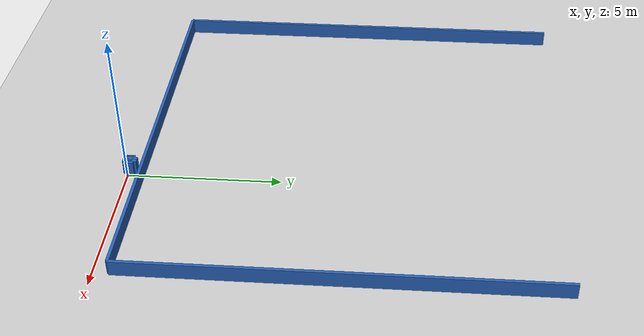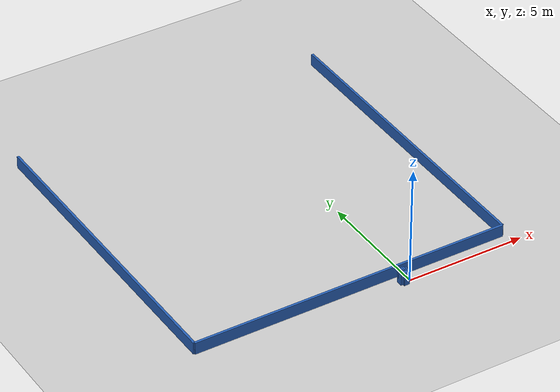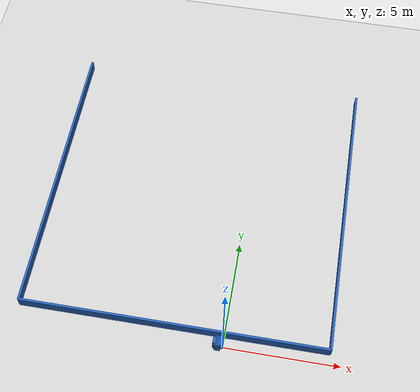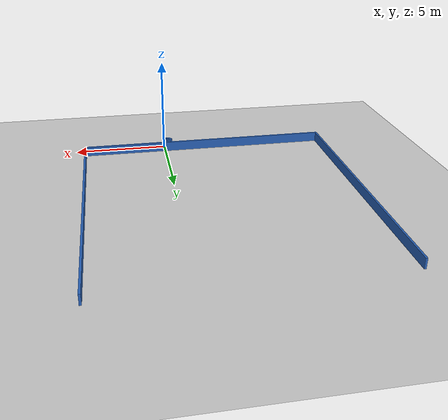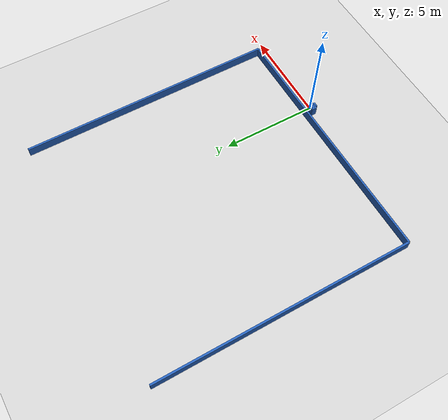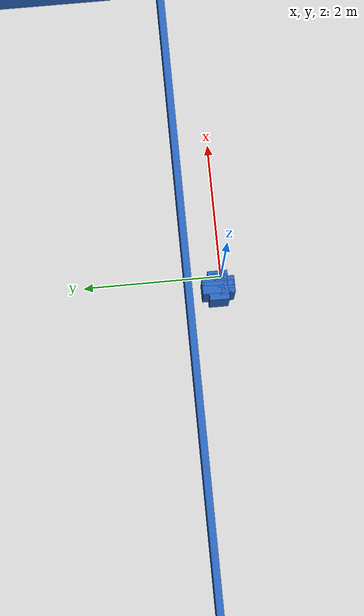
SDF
<?xml version="1.0" ?>
    <sdf version="1.5">
      <world name="default">
        <!-- A global light source -->
        <include>
          <uri>model://sun</uri>
        </include>
        <!-- A ground plane -->
        <include>
          <uri>model://ground_plane</uri>
        </include>

    <model name='libopen_space_final_T2B_148_40'>
      <static>1</static>
      <pose frame=''>-0.225000 0.075000 0.000000 0.000000 0.000000 0.000000</pose>
      <link name='link'>
        <inertial>
          <mass>1</mass>
          <inertia>
            <ixx>0.145833</ixx>
            <ixy>0</ixy>
            <ixz>0</ixz>
            <iyy>0.145833</iyy>
            <iyz>0</iyz>
            <izz>0.125</izz>
          </inertia>
        </inertial>
        <collision name='collision'>
          <geometry>
            <box>
              <size>0.29 0.26 1</size>
            </box>
          </geometry>
          <max_contacts>10</max_contacts>
          <surface>
            <contact>
              <ode/>
            </contact>
            <bounce/>
            <friction>
              <torsional>
                <ode/>
              </torsional>
              <ode/>
            </friction>
          </surface>
        </collision>
        <visual name='visual'>
          <geometry>
            <box>
              <size>0.29 0.26 1</size>
            </box>
          </geometry>
	    <material>
              <ambient>0.152000 0.379000 0.720000 1</ambient>
	      <diffuse>0.152000 0.379000 0.720000 1</diffuse>
          </material>
          <material>
            <script>
              <name>Gazebo/Grey</name>
              <uri>file://media/materials/scripts/gazebo.material</uri>
            </script>
          </material>
        </visual>
        <self_collide>0</self_collide>
        <kinematic>0</kinematic>
        <gravity>1</gravity>
      </link>
      <plugin name='libopen_space_final_T2B_148_40' filename='libopen_space_final_T2B_148_40.so'/>
    </model>

    <model name='libopen_space_final_T2B_51_63'>
      <static>1</static>
      <pose frame=''>-0.225000 0.075000 0.000000 0.000000 0.000000 0.000000</pose>
      <link name='link'>
        <inertial>
          <mass>1</mass>
          <inertia>
            <ixx>0.145833</ixx>
            <ixy>0</ixy>
            <ixz>0</ixz>
            <iyy>0.145833</iyy>
            <iyz>0</iyz>
            <izz>0.125</izz>
          </inertia>
        </inertial>
        <collision name='collision'>
          <geometry>
            <box>
              <size>0.42 0.14 1</size>
            </box>
          </geometry>
          <max_contacts>10</max_contacts>
          <surface>
            <contact>
              <ode/>
            </contact>
            <bounce/>
            <friction>
              <torsional>
                <ode/>
              </torsional>
              <ode/>
            </friction>
          </surface>
        </collision>
        <visual name='visual'>
          <geometry>
            <box>
              <size>0.42 0.14 1</size>
            </box>
          </geometry>
	    <material>
              <ambient>0.152000 0.379000 0.720000 1</ambient>
	      <diffuse>0.152000 0.379000 0.720000 1</diffuse>
          </material>
          <material>
            <script>
              <name>Gazebo/Grey</name>
              <uri>file://media/materials/scripts/gazebo.material</uri>
            </script>
          </material>
        </visual>
        <self_collide>0</self_collide>
        <kinematic>0</kinematic>
        <gravity>1</gravity>
      </link>
      <plugin name='libopen_space_final_T2B_51_63' filename='libopen_space_final_T2B_51_63.so'/>
    </model>

    <model name='libopen_space_final_T2B_111_18'>
      <static>1</static>
      <pose frame=''>-0.225000 0.075000 0.000000 0.000000 0.000000 0.000000</pose>
      <link name='link'>
        <inertial>
          <mass>1</mass>
          <inertia>
            <ixx>0.145833</ixx>
            <ixy>0</ixy>
            <ixz>0</ixz>
            <iyy>0.145833</iyy>
            <iyz>0</iyz>
            <izz>0.125</izz>
          </inertia>
        </inertial>
        <collision name='collision'>
          <geometry>
            <box>
              <size>0.42 0.28 1</size>
            </box>
          </geometry>
          <max_contacts>10</max_contacts>
          <surface>
            <contact>
              <ode/>
            </contact>
            <bounce/>
            <friction>
              <torsional>
                <ode/>
              </torsional>
              <ode/>
            </friction>
          </surface>
        </collision>
        <visual name='visual'>
          <geometry>
            <box>
              <size>0.42 0.28 1</size>
            </box>
          </geometry>
	    <material>
              <ambient>0.152000 0.379000 0.720000 1</ambient>
	      <diffuse>0.152000 0.379000 0.720000 1</diffuse>
          </material>
          <material>
            <script>
              <name>Gazebo/Grey</name>
              <uri>file://media/materials/scripts/gazebo.material</uri>
            </script>
          </material>
        </visual>
        <self_collide>0</self_collide>
        <kinematic>0</kinematic>
        <gravity>1</gravity>
      </link>
      <plugin name='libopen_space_final_T2B_111_18' filename='libopen_space_final_T2B_111_18.so'/>
    </model>

    <model name='libopen_space_final_T2B_106_71'>
      <static>1</static>
      <pose frame=''>-0.225000 0.075000 0.000000 0.000000 0.000000 0.000000</pose>
      <link name='link'>
        <inertial>
          <mass>1</mass>
          <inertia>
            <ixx>0.145833</ixx>
            <ixy>0</ixy>
            <ixz>0</ixz>
            <iyy>0.145833</iyy>
            <iyz>0</iyz>
            <izz>0.125</izz>
          </inertia>
        </inertial>
        <collision name='collision'>
          <geometry>
            <box>
              <size>0.12 0.42 1</size>
            </box>
          </geometry>
          <max_contacts>10</max_contacts>
          <surface>
            <contact>
              <ode/>
            </contact>
            <bounce/>
            <friction>
              <torsional>
                <ode/>
              </torsional>
              <ode/>
            </friction>
          </surface>
        </collision>
        <visual name='visual'>
          <geometry>
            <box>
              <size>0.12 0.42 1</size>
            </box>
          </geometry>
	    <material>
              <ambient>0.152000 0.379000 0.720000 1</ambient>
	      <diffuse>0.152000 0.379000 0.720000 1</diffuse>
          </material>
          <material>
            <script>
              <name>Gazebo/Grey</name>
              <uri>file://media/materials/scripts/gazebo.material</uri>
            </script>
          </material>
        </visual>
        <self_collide>0</self_collide>
        <kinematic>0</kinematic>
        <gravity>1</gravity>
      </link>
      <plugin name='libopen_space_final_T2B_106_71' filename='libopen_space_final_T2B_106_71.so'/>
    </model>

    <model name='libopen_space_final_T2B_113_82'>
      <static>1</static>
      <pose frame=''>-0.225000 0.075000 0.000000 0.000000 0.000000 0.000000</pose>
      <link name='link'>
        <inertial>
          <mass>1</mass>
          <inertia>
            <ixx>0.145833</ixx>
            <ixy>0</ixy>
            <ixz>0</ixz>
            <iyy>0.145833</iyy>
            <iyz>0</iyz>
            <izz>0.125</izz>
          </inertia>
        </inertial>
        <collision name='collision'>
          <geometry>
            <box>
              <size>0.18 0.18 1</size>
            </box>
          </geometry>
          <max_contacts>10</max_contacts>
          <surface>
            <contact>
              <ode/>
            </contact>
            <bounce/>
            <friction>
              <torsional>
                <ode/>
              </torsional>
              <ode/>
            </friction>
          </surface>
        </collision>
        <visual name='visual'>
          <geometry>
            <box>
              <size>0.18 0.18 1</size>
            </box>
          </geometry>
	    <material>
              <ambient>0.152000 0.379000 0.720000 1</ambient>
	      <diffuse>0.152000 0.379000 0.720000 1</diffuse>
          </material>
          <material>
            <script>
              <name>Gazebo/Grey</name>
              <uri>file://media/materials/scripts/gazebo.material</uri>
            </script>
          </material>
        </visual>
        <self_collide>0</self_collide>
        <kinematic>0</kinematic>
        <gravity>1</gravity>
      </link>
      <plugin name='libopen_space_final_T2B_113_82' filename='libopen_space_final_T2B_113_82.so'/>
    </model>

    <model name='libopen_space_final_T2B_125_48'>
      <static>1</static>
      <pose frame=''>-0.225000 0.075000 0.000000 0.000000 0.000000 0.000000</pose>
      <link name='link'>
        <inertial>
          <mass>1</mass>
          <inertia>
            <ixx>0.145833</ixx>
            <ixy>0</ixy>
            <ixz>0</ixz>
            <iyy>0.145833</iyy>
            <iyz>0</iyz>
            <izz>0.125</izz>
          </inertia>
        </inertial>
        <collision name='collision'>
          <geometry>
            <box>
              <size>0.17 0.24 1</size>
            </box>
          </geometry>
          <max_contacts>10</max_contacts>
          <surface>
            <contact>
              <ode/>
            </contact>
            <bounce/>
            <friction>
              <torsional>
                <ode/>
              </torsional>
              <ode/>
            </friction>
          </surface>
        </collision>
        <visual name='visual'>
          <geometry>
            <box>
              <size>0.17 0.24 1</size>
            </box>
          </geometry>
	    <material>
              <ambient>0.152000 0.379000 0.720000 1</ambient>
	      <diffuse>0.152000 0.379000 0.720000 1</diffuse>
          </material>
          <material>
            <script>
              <name>Gazebo/Grey</name>
              <uri>file://media/materials/scripts/gazebo.material</uri>
            </script>
          </material>
        </visual>
        <self_collide>0</self_collide>
        <kinematic>0</kinematic>
        <gravity>1</gravity>
      </link>
      <plugin name='libopen_space_final_T2B_125_48' filename='libopen_space_final_T2B_125_48.so'/>
    </model>

    <model name='libopen_space_final_T2B_92_34'>
      <static>1</static>
      <pose frame=''>-0.225000 0.075000 0.000000 0.000000 0.000000 0.000000</pose>
      <link name='link'>
        <inertial>
          <mass>1</mass>
          <inertia>
            <ixx>0.145833</ixx>
            <ixy>0</ixy>
            <ixz>0</ixz>
            <iyy>0.145833</iyy>
            <iyz>0</iyz>
            <izz>0.125</izz>
          </inertia>
        </inertial>
        <collision name='collision'>
          <geometry>
            <box>
              <size>0.10 0.15 1</size>
            </box>
          </geometry>
          <max_contacts>10</max_contacts>
          <surface>
            <contact>
              <ode/>
            </contact>
            <bounce/>
            <friction>
              <torsional>
                <ode/>
              </torsional>
              <ode/>
            </friction>
          </surface>
        </collision>
        <visual name='visual'>
          <geometry>
            <box>
              <size>0.10 0.15 1</size>
            </box>
          </geometry>
	    <material>
              <ambient>0.152000 0.379000 0.720000 1</ambient>
	      <diffuse>0.152000 0.379000 0.720000 1</diffuse>
          </material>
          <material>
            <script>
              <name>Gazebo/Grey</name>
              <uri>file://media/materials/scripts/gazebo.material</uri>
            </script>
          </material>
        </visual>
        <self_collide>0</self_collide>
        <kinematic>0</kinematic>
        <gravity>1</gravity>
      </link>
      <plugin name='libopen_space_final_T2B_92_34' filename='libopen_space_final_T2B_92_34.so'/>
    </model>

    <model name='libopen_space_final_T2B_125_67'>
      <static>1</static>
      <pose frame=''>-0.225000 0.075000 0.000000 0.000000 0.000000 0.000000</pose>
      <link name='link'>
        <inertial>
          <mass>1</mass>
          <inertia>
            <ixx>0.145833</ixx>
            <ixy>0</ixy>
            <ixz>0</ixz>
            <iyy>0.145833</iyy>
            <iyz>0</iyz>
            <izz>0.125</izz>
          </inertia>
        </inertial>
        <collision name='collision'>
          <geometry>
            <box>
              <size>0.34 0.18 1</size>
            </box>
          </geometry>
          <max_contacts>10</max_contacts>
          <surface>
            <contact>
              <ode/>
            </contact>
            <bounce/>
            <friction>
              <torsional>
                <ode/>
              </torsional>
              <ode/>
            </friction>
          </surface>
        </collision>
        <visual name='visual'>
          <geometry>
            <box>
              <size>0.34 0.18 1</size>
            </box>
          </geometry>
	    <material>
              <ambient>0.152000 0.379000 0.720000 1</ambient>
	      <diffuse>0.152000 0.379000 0.720000 1</diffuse>
          </material>
          <material>
            <script>
              <name>Gazebo/Grey</name>
              <uri>file://media/materials/scripts/gazebo.material</uri>
            </script>
          </material>
        </visual>
        <self_collide>0</self_collide>
        <kinematic>0</kinematic>
        <gravity>1</gravity>
      </link>
      <plugin name='libopen_space_final_T2B_125_67' filename='libopen_space_final_T2B_125_67.so'/>
    </model>

    <model name='libopen_space_final_T2B_123_20'>
      <static>1</static>
      <pose frame=''>-0.225000 0.075000 0.000000 0.000000 0.000000 0.000000</pose>
      <link name='link'>
        <inertial>
          <mass>1</mass>
          <inertia>
            <ixx>0.145833</ixx>
            <ixy>0</ixy>
            <ixz>0</ixz>
            <iyy>0.145833</iyy>
            <iyz>0</iyz>
            <izz>0.125</izz>
          </inertia>
        </inertial>
        <collision name='collision'>
          <geometry>
            <box>
              <size>0.23 0.46 1</size>
            </box>
          </geometry>
          <max_contacts>10</max_contacts>
          <surface>
            <contact>
              <ode/>
            </contact>
            <bounce/>
            <friction>
              <torsional>
                <ode/>
              </torsional>
              <ode/>
            </friction>
          </surface>
        </collision>
        <visual name='visual'>
          <geometry>
            <box>
              <size>0.23 0.46 1</size>
            </box>
          </geometry>
	    <material>
              <ambient>0.152000 0.379000 0.720000 1</ambient>
	      <diffuse>0.152000 0.379000 0.720000 1</diffuse>
          </material>
          <material>
            <script>
              <name>Gazebo/Grey</name>
              <uri>file://media/materials/scripts/gazebo.material</uri>
            </script>
          </material>
        </visual>
        <self_collide>0</self_collide>
        <kinematic>0</kinematic>
        <gravity>1</gravity>
      </link>
      <plugin name='libopen_space_final_T2B_123_20' filename='libopen_space_final_T2B_123_20.so'/>
    </model>

    <model name='libopen_space_final_T2B_83_23'>
      <static>1</static>
      <pose frame=''>-0.225000 0.075000 0.000000 0.000000 0.000000 0.000000</pose>
      <link name='link'>
        <inertial>
          <mass>1</mass>
          <inertia>
            <ixx>0.145833</ixx>
            <ixy>0</ixy>
            <ixz>0</ixz>
            <iyy>0.145833</iyy>
            <iyz>0</iyz>
            <izz>0.125</izz>
          </inertia>
        </inertial>
        <collision name='collision'>
          <geometry>
            <box>
              <size>0.25 0.45 1</size>
            </box>
          </geometry>
          <max_contacts>10</max_contacts>
          <surface>
            <contact>
              <ode/>
            </contact>
            <bounce/>
            <friction>
              <torsional>
                <ode/>
              </torsional>
              <ode/>
            </friction>
          </surface>
        </collision>
        <visual name='visual'>
          <geometry>
            <box>
              <size>0.25 0.45 1</size>
            </box>
          </geometry>
	    <material>
              <ambient>0.152000 0.379000 0.720000 1</ambient>
	      <diffuse>0.152000 0.379000 0.720000 1</diffuse>
          </material>
          <material>
            <script>
              <name>Gazebo/Grey</name>
              <uri>file://media/materials/scripts/gazebo.material</uri>
            </script>
          </material>
        </visual>
        <self_collide>0</self_collide>
        <kinematic>0</kinematic>
        <gravity>1</gravity>
      </link>
      <plugin name='libopen_space_final_T2B_83_23' filename='libopen_space_final_T2B_83_23.so'/>
    </model>

    <model name='libopen_space_final_T2B_56_75'>
      <static>1</static>
      <pose frame=''>-0.225000 0.075000 0.000000 0.000000 0.000000 0.000000</pose>
      <link name='link'>
        <inertial>
          <mass>1</mass>
          <inertia>
            <ixx>0.145833</ixx>
            <ixy>0</ixy>
            <ixz>0</ixz>
            <iyy>0.145833</iyy>
            <iyz>0</iyz>
            <izz>0.125</izz>
          </inertia>
        </inertial>
        <collision name='collision'>
          <geometry>
            <box>
              <size>0.11 0.45 1</size>
            </box>
          </geometry>
          <max_contacts>10</max_contacts>
          <surface>
            <contact>
              <ode/>
            </contact>
            <bounce/>
            <friction>
              <torsional>
                <ode/>
              </torsional>
              <ode/>
            </friction>
          </surface>
        </collision>
        <visual name='visual'>
          <geometry>
            <box>
              <size>0.11 0.45 1</size>
            </box>
          </geometry>
	    <material>
              <ambient>0.152000 0.379000 0.720000 1</ambient>
	      <diffuse>0.152000 0.379000 0.720000 1</diffuse>
          </material>
          <material>
            <script>
              <name>Gazebo/Grey</name>
              <uri>file://media/materials/scripts/gazebo.material</uri>
            </script>
          </material>
        </visual>
        <self_collide>0</self_collide>
        <kinematic>0</kinematic>
        <gravity>1</gravity>
      </link>
      <plugin name='libopen_space_final_T2B_56_75' filename='libopen_space_final_T2B_56_75.so'/>
    </model>

    <model name='libopen_space_final_T2B_91_29'>
      <static>1</static>
      <pose frame=''>-0.225000 0.075000 0.000000 0.000000 0.000000 0.000000</pose>
      <link name='link'>
        <inertial>
          <mass>1</mass>
          <inertia>
            <ixx>0.145833</ixx>
            <ixy>0</ixy>
            <ixz>0</ixz>
            <iyy>0.145833</iyy>
            <iyz>0</iyz>
            <izz>0.125</izz>
          </inertia>
        </inertial>
        <collision name='collision'>
          <geometry>
            <box>
              <size>0.24 0.18 1</size>
            </box>
          </geometry>
          <max_contacts>10</max_contacts>
          <surface>
            <contact>
              <ode/>
            </contact>
            <bounce/>
            <friction>
              <torsional>
                <ode/>
              </torsional>
              <ode/>
            </friction>
          </surface>
        </collision>
        <visual name='visual'>
          <geometry>
            <box>
              <size>0.24 0.18 1</size>
            </box>
          </geometry>
	    <material>
              <ambient>0.152000 0.379000 0.720000 1</ambient>
	      <diffuse>0.152000 0.379000 0.720000 1</diffuse>
          </material>
          <material>
            <script>
              <name>Gazebo/Grey</name>
              <uri>file://media/materials/scripts/gazebo.material</uri>
            </script>
          </material>
        </visual>
        <self_collide>0</self_collide>
        <kinematic>0</kinematic>
        <gravity>1</gravity>
      </link>
      <plugin name='libopen_space_final_T2B_91_29' filename='libopen_space_final_T2B_91_29.so'/>
    </model>

        <model name='bottom_wall'>
          <static>1</static>
          <pose frame=''>-2.25 0.5 0.000000 0.000000 0.000000 1.57079632</pose>
          <link name='link'>
            <inertial>
            <mass>1</mass>
            <inertia>
              <ixx>0.145833</ixx>
              <ixy>0</ixy>
              <ixz>0</ixz>
              <iyy>0.145833</iyy>
              <iyz>0</iyz>
              <izz>0.125</izz>
            </inertia>
            </inertial>
            <collision name='collision'>
            <geometry>
              <box>
              <size>0.1 13.5 1</size>
              </box>
            </geometry>
            <max_contacts>10</max_contacts>
            <surface>
              <contact>
              <ode/>
              </contact>
              <bounce/>
              <friction>
              <torsional>
                <ode/>
              </torsional>
              <ode/>
              </friction>
            </surface>
            </collision>
            <visual name='visual'>
            <geometry>
              <box>
              <size>0.1 13.5 1</size>
              </box>
            </geometry>
            <material>
              <ambient>0.152000 0.379000 0.720000 1</ambient>
            <diffuse>0.152000 0.379000 0.720000 1</diffuse>
            </material>
            <material>
              <script>
              <name>Gazebo/Grey</name>
              <uri>file://media/materials/scripts/gazebo.material</uri>
              </script>
            </material>
            </visual>
            <self_collide>0</self_collide>
            <kinematic>0</kinematic>
            <gravity>1</gravity>
          </link>
        </model>

        <model name='left_wall'>
          <static>1</static>
          <pose frame=''>-9 7.25 0.000000 0.000000 0.000000 0.000000</pose>
          <link name='link'>
            <inertial>
            <mass>1</mass>
            <inertia>
              <ixx>0.145833</ixx>
              <ixy>0</ixy>
              <ixz>0</ixz>
              <iyy>0.145833</iyy>
              <iyz>0</iyz>
              <izz>0.125</izz>
            </inertia>
            </inertial>
            <collision name='collision'>
            <geometry>
              <box>
              <size>0.1 13.5 1</size>
              </box>
            </geometry>
            <max_contacts>10</max_contacts>
            <surface>
              <contact>
              <ode/>
              </contact>
              <bounce/>
              <friction>
              <torsional>
                <ode/>
              </torsional>
              <ode/>
              </friction>
            </surface>
            </collision>
            <visual name='visual'>
            <geometry>
              <box>
              <size>0.1 13.5 1</size>
              </box>
            </geometry>
            <material>
              <ambient>0.152000 0.379000 0.720000 1</ambient>
            <diffuse>0.152000 0.379000 0.720000 1</diffuse>
            </material>
            <material>
              <script>
              <name>Gazebo/Grey</name>
              <uri>file://media/materials/scripts/gazebo.material</uri>
              </script>
            </material>
            </visual>
            <self_collide>0</self_collide>
            <kinematic>0</kinematic>
            <gravity>1</gravity>
          </link>
        </model>

        <model name='right_wall'>
          <static>1</static>
          <pose frame=''>4.5 7.25 0.000000 0.000000 0.000000 0.000000</pose>
          <link name='link'>
            <inertial>
            <mass>1</mass>
            <inertia>
              <ixx>0.145833</ixx>
              <ixy>0</ixy>
              <ixz>0</ixz>
              <iyy>0.145833</iyy>
              <iyz>0</iyz>
              <izz>0.125</izz>
            </inertia>
            </inertial>
            <collision name='collision'>
            <geometry>
              <box>
              <size>0.1 13.5 1</size>
              </box>
            </geometry>
            <max_contacts>10</max_contacts>
            <surface>
              <contact>
              <ode/>
              </contact>
              <bounce/>
              <friction>
              <torsional>
                <ode/>
              </torsional>
              <ode/>
              </friction>
            </surface>
            </collision>
            <visual name='visual'>
            <geometry>
              <box>
              <size>0.1 13.5 1</size>
              </box>
            </geometry>
            <material>
              <ambient>0.152000 0.379000 0.720000 1</ambient>
            <diffuse>0.152000 0.379000 0.720000 1</diffuse>
            </material>
            <material>
              <script>
              <name>Gazebo/Grey</name>
              <uri>file://media/materials/scripts/gazebo.material</uri>
              </script>
            </material>
            </visual>
            <self_collide>0</self_collide>
            <kinematic>0</kinematic>
            <gravity>1</gravity>
          </link>
        </model>

      </world>
    </sdf>"
